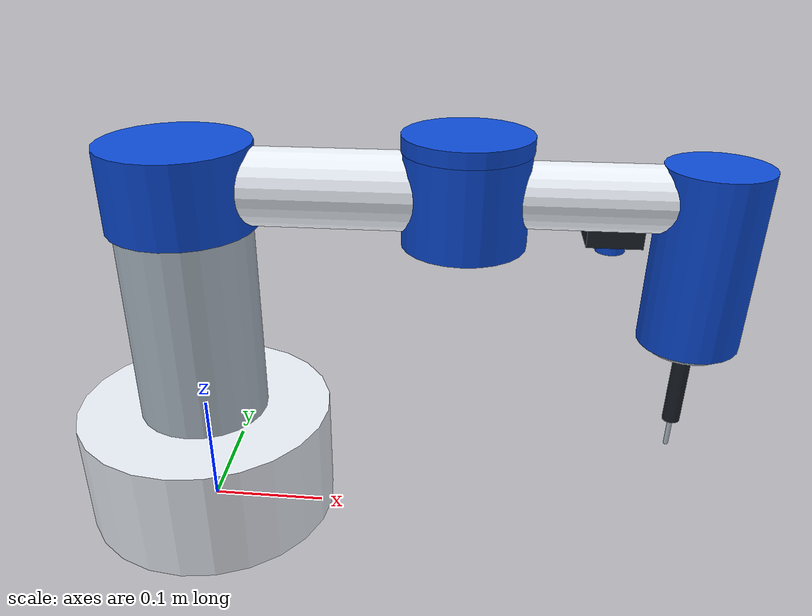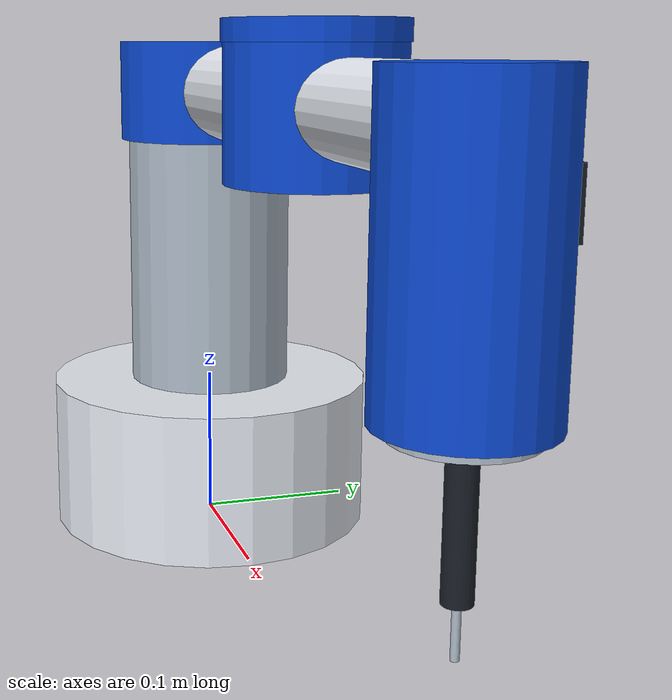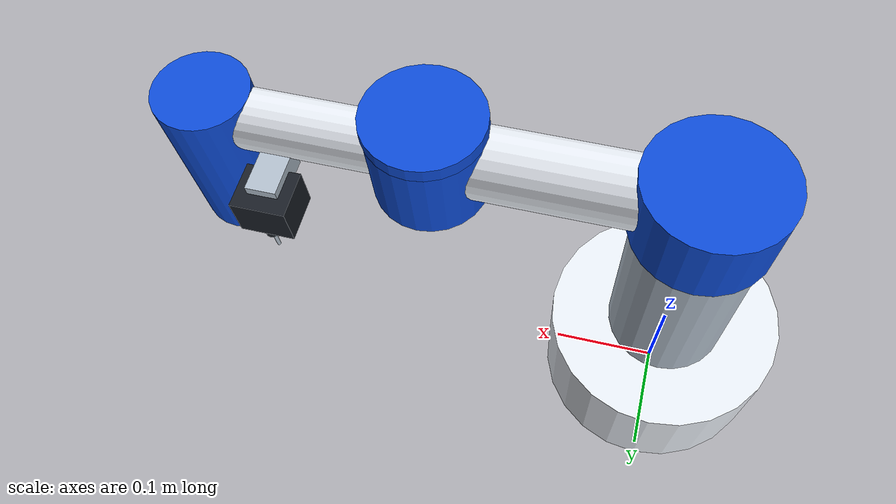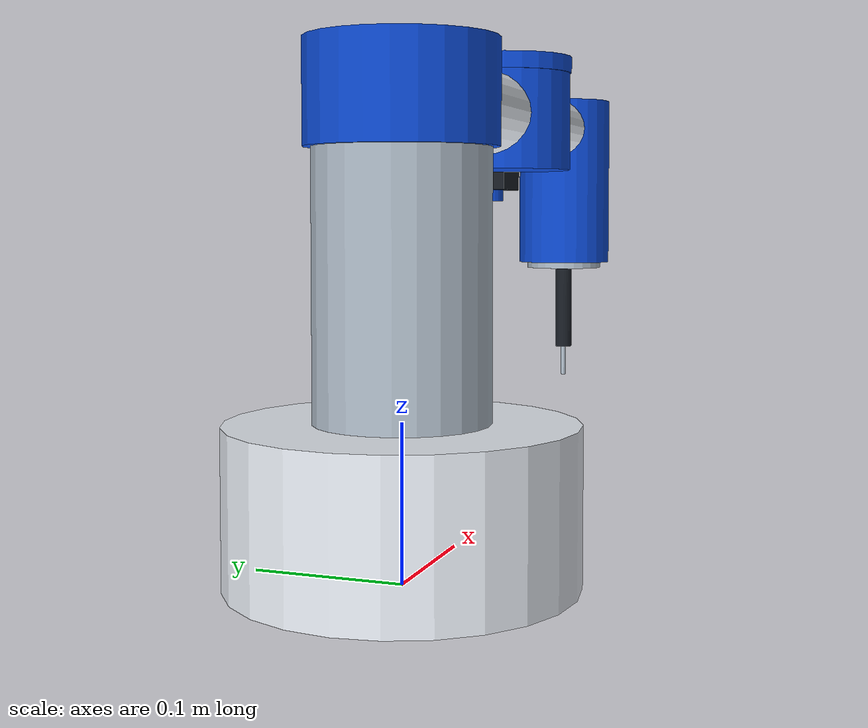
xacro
<?xml version="1.0"?>
<robot xmlns:xacro="http://www.ros.org/wiki/xacro"
       name="pipet_final">

  <!-- RENKLER -->
  <material name="white">
    <color rgba="0.92 0.94 0.97 1"/>
  </material>

  <material name="blue">
    <color rgba="0.05 0.30 0.85 1"/>
  </material>

  <material name="silver">
    <color rgba="0.70 0.75 0.80 1"/>
  </material>

  <material name="black">
    <color rgba="0.10 0.12 0.15 1"/>
  </material>

  <!-- SILINDIR MAKROSU -->
  <xacro:macro name="cylinder_part"
    params="name radius length mass x y z roll pitch yaw color">

    <link name="${name}">

      <visual>
        <origin xyz="${x} ${y} ${z}"
                rpy="${roll} ${pitch} ${yaw}"/>
        <geometry>
          <cylinder radius="${radius}" length="${length}"/>
        </geometry>
        <material name="${color}"/>
      </visual>

      <collision>
        <origin xyz="${x} ${y} ${z}"
                rpy="${roll} ${pitch} ${yaw}"/>
        <geometry>
          <cylinder radius="${radius}" length="${length}"/>
        </geometry>
      </collision>

      <inertial>
        <origin xyz="${x} ${y} ${z}"
                rpy="${roll} ${pitch} ${yaw}"/>
        <mass value="${mass}"/>
        <inertia
          ixx="${mass*(3*radius*radius+length*length)/12}"
          ixy="0"
          ixz="0"
          iyy="${mass*(3*radius*radius+length*length)/12}"
          iyz="0"
          izz="${mass*radius*radius/2}"/>
      </inertial>

    </link>
  </xacro:macro>

  <!-- DUNYA -->
  <link name="world"/>

  <!-- TABAN -->
  <joint name="world_fixed" type="fixed">
    <parent link="world"/>
    <child link="base_link"/>
    <origin xyz="0 0 0.05"/>
  </joint>

  <xacro:cylinder_part
    name="base_link"
    radius="0.11" length="0.10" mass="4.0"
    x="0" y="0" z="0"
    roll="0" pitch="0" yaw="0"
    color="white"/>

  <!-- ANA GOVDE -->
  <joint name="column_fixed" type="fixed">
    <parent link="base_link"/>
    <child link="column_link"/>
    <origin xyz="0 0 0.05"/>
  </joint>

  <xacro:cylinder_part
    name="column_link"
    radius="0.055" length="0.20" mass="1.0"
    x="0" y="0" z="0.10"
    roll="0" pitch="0" yaw="0"
    color="silver"/>

  <!-- JOINT 1 -->
  <joint name="joint1" type="revolute">
    <parent link="column_link"/>
    <child link="arm1_link"/>
    <origin xyz="0 0 0.20"/>
    <axis xyz="0 0 1"/>
    <limit lower="-1.57" upper="1.57"
           effort="50" velocity="0.6"/>
    <dynamics damping="0.5"/>
  </joint>

  <!-- BIRINCI KOL -->
  <xacro:cylinder_part
    name="arm1_link"
    radius="0.030" length="0.22" mass="0.8"
    x="0.11" y="0" z="0"
    roll="0" pitch="1.57079632679" yaw="0"
    color="white"/>

  <!-- BIRINCI MOTOR KAPAGI -->
  <joint name="motor1_fixed" type="fixed">
    <parent link="arm1_link"/>
    <child link="motor1_link"/>
    <origin xyz="0 0 0"/>
  </joint>

  <xacro:cylinder_part
    name="motor1_link"
    radius="0.060" length="0.065" mass="0.25"
    x="0" y="0" z="0"
    roll="0" pitch="0" yaw="0"
    color="blue"/>

  <!-- JOINT 2 -->
  <joint name="joint2" type="revolute">
    <parent link="arm1_link"/>
    <child link="arm2_link"/>
    <origin xyz="0.22 0 0"/>
    <axis xyz="0 0 1"/>
    <limit lower="-2.0" upper="2.0"
           effort="30" velocity="0.6"/>
    <dynamics damping="0.5"/>
  </joint>

  <!-- IKINCI KOL -->
  <xacro:cylinder_part
    name="arm2_link"
    radius="0.025" length="0.18" mass="0.5"
    x="0.09" y="0" z="0"
    roll="0" pitch="1.57079632679" yaw="0"
    color="white"/>

  <!-- IKINCI MOTOR KAPAGI -->
  <joint name="motor2_fixed" type="fixed">
    <parent link="arm2_link"/>
    <child link="motor2_link"/>
    <origin xyz="0 0 0"/>
  </joint>

  <xacro:cylinder_part
    name="motor2_link"
    radius="0.048" length="0.080" mass="0.20"
    x="0" y="0" z="0"
    roll="0" pitch="0" yaw="0"
    color="blue"/>

  <!-- DIKEY KIZAK GOVDESI -->
  <joint name="housing_fixed" type="fixed">
    <parent link="arm2_link"/>
    <child link="housing_link"/>
    <origin xyz="0.18 0 0"/>
  </joint>

  <xacro:cylinder_part
    name="housing_link"
    radius="0.032" length="0.12" mass="0.20"
    x="0" y="0" z="-0.06"
    roll="0" pitch="0" yaw="0"
    color="silver"/>

  <!-- JOINT 3 -->
  <joint name="joint3" type="prismatic">
    <parent link="arm2_link"/>
    <child link="carriage_link"/>
    <origin xyz="0.18 0 0"/>
    <axis xyz="0 0 -1"/>
    <limit lower="0" upper="0.08"
           effort="40" velocity="0.03"/>
    <dynamics damping="2.0"/>
  </joint>

  <!-- PIPET TASIYICI -->
  <xacro:cylinder_part
    name="carriage_link"
    radius="0.016" length="0.10" mass="0.15"
    x="0" y="0" z="-0.05"
    roll="0" pitch="0" yaw="0"
    color="blue"/>

  <!-- PIPET -->
  <joint name="pipette_fixed" type="fixed">
    <parent link="carriage_link"/>
    <child link="pipette_link"/>
    <origin xyz="0 0 -0.10"/>
  </joint>

  <xacro:cylinder_part
    name="pipette_link"
    radius="0.007" length="0.09" mass="0.05"
    x="0" y="0" z="-0.045"
    roll="0" pitch="0" yaw="0"
    color="black"/>

  <!-- PIPET UCU -->
  <joint name="tip_fixed" type="fixed">
    <parent link="pipette_link"/>
    <child link="tip_link"/>
    <origin xyz="0 0 -0.09"/>
  </joint>

  <xacro:cylinder_part
    name="tip_link"
    radius="0.002" length="0.025" mass="0.005"
    x="0" y="0" z="-0.0125"
    roll="0" pitch="0" yaw="0"
    color="silver"/>

  <!-- UC EFEKTOR -->
  <link name="tool0"/>

  <joint name="tool0_fixed" type="fixed">
    <parent link="tip_link"/>
    <child link="tool0"/>
    <origin xyz="0 0 -0.025"/>
  </joint>

  <!-- IKINCI KOL UCU BAGLANTI FLANSI -->
  <joint name="end_flange_fixed" type="fixed">
    <parent link="arm2_link"/>
    <child link="end_flange_link"/>
    <origin xyz="0.18 0 -0.045"/>
  </joint>

  <link name="end_flange_link">
    <visual>
      <geometry>
        <cylinder radius="0.039" length="0.140"/>
      </geometry>
      <material name="blue"/>
    </visual>
    <inertial>
      <mass value="0.10"/>
      <inertia ixx="0.00006" ixy="0" ixz="0"
               iyy="0.00006" iyz="0"
               izz="0.00008"/>
    </inertial>
  </link>

  <!-- KAMERA BAGLANTI APARATI -->
  <joint name="camera_bracket_fixed" type="fixed">
    <parent link="arm2_link"/>
    <child link="camera_bracket_link"/>
    <origin xyz="0.12 0.023 -0.020"/>
  </joint>

  <link name="camera_bracket_link">
    <visual>
      <origin xyz="0 0.012 0"/>
      <geometry>
        <box size="0.025 0.045 0.020"/>
      </geometry>
      <material name="silver"/>
    </visual>
  </link>

  <!-- KAMERA GOVDESI -->
  <joint name="camera_fixed" type="fixed">
    <parent link="camera_bracket_link"/>
    <child link="camera_link"/>
    <origin xyz="0 0.028 -0.015"/>
  </joint>

  <link name="camera_link">
    <visual>
      <geometry>
        <box size="0.045 0.040 0.035"/>
      </geometry>
      <material name="black"/>
    </visual>

    <!-- ASAGI BAKAN LENS -->
    <visual>
      <origin xyz="0 0 -0.021"/>
      <geometry>
        <cylinder radius="0.012" length="0.012"/>
      </geometry>
      <material name="blue"/>
    </visual>

    <collision>
      <geometry>
        <box size="0.045 0.040 0.035"/>
      </geometry>
    </collision>

    <inertial>
      <mass value="0.08"/>
      <inertia
        ixx="0.00002" ixy="0" ixz="0"
        iyy="0.00002" iyz="0"
        izz="0.00002"/>
    </inertial>
  </link>

  <!-- GAZEBO KAMERA SENSORU -->
  <gazebo reference="camera_link">
    <sensor name="pipet_camera" type="camera">
      <pose>0 0 -0.03 0 1.20 0</pose>
      <always_on>true</always_on>
      <update_rate>15</update_rate>
      <topic>/pipet_camera/image</topic>
      <camera>
        <horizontal_fov>1.047</horizontal_fov>
        <image>
          <width>640</width>
          <height>480</height>
          <format>R8G8B8</format>
        </image>
        <clip>
          <near>0.01</near>
          <far>5.0</far>
        </clip>
      </camera>
    </sensor>
  </gazebo>

  <!-- IKINCI MOTOR UST KAPAGI -->
  <joint name="motor2_top_fixed" type="fixed">
    <parent link="motor2_link"/>
    <child link="motor2_top_cap"/>
    <origin xyz="0 0 0.038"/>
  </joint>

  <link name="motor2_top_cap">
    <visual>
      <geometry>
        <cylinder radius="0.049" length="0.012"/>
      </geometry>
      <material name="blue"/>
    </visual>
  </link>
  <!-- ROS 2 CONTROL -->

  <ros2_control name="GazeboSimSystem" type="system">

    <hardware>
      <plugin>gz_ros2_control/GazeboSimSystem</plugin>
    </hardware>

    <joint name="joint1">
      <command_interface name="position"/>
      <state_interface name="position"/>
      <state_interface name="velocity"/>
    </joint>

    <joint name="joint2">
      <command_interface name="position"/>
      <state_interface name="position"/>
      <state_interface name="velocity"/>
    </joint>

    <joint name="joint3">
      <command_interface name="position"/>
      <state_interface name="position"/>
      <state_interface name="velocity"/>
    </joint>

  </ros2_control>

  <!-- GAZEBO CONTROL PLUGIN -->

  <gazebo>
    <plugin
      filename="libgz_ros2_control-system.so"
      name="gz_ros2_control::GazeboSimROS2ControlPlugin">

      <parameters>/home/ummahantemel/pipet_final_ws/src/pipet_final/config/controllers.yaml</parameters>

    </plugin>
  </gazebo>
</robot>
